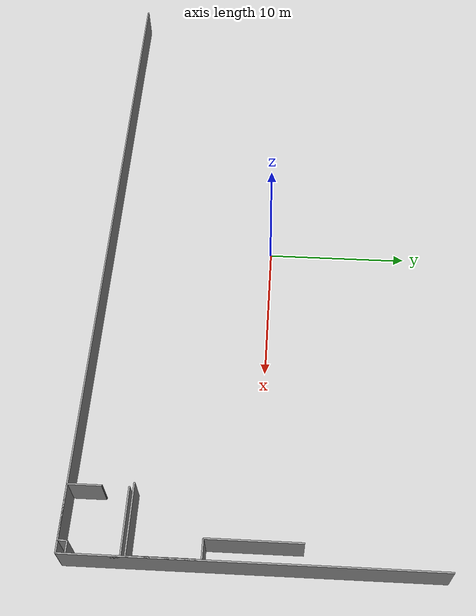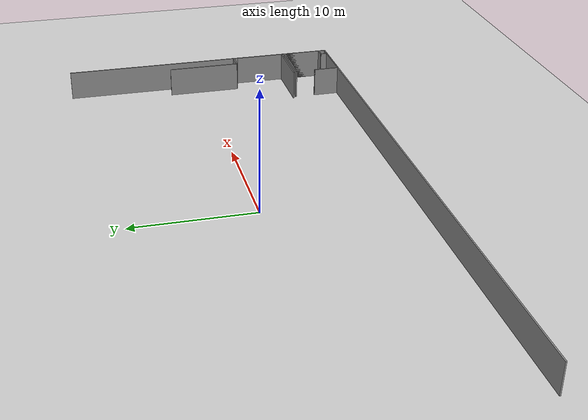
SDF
<sdf version="1.6">
 <world name="default">
  <model name="ground_plane">
   <static>1</static>
   <link name="link">
    <collision name="collision">
     <geometry><plane><normal>0 0 1</normal><size>100 100</size></plane></geometry>
     <surface><friction><ode><mu>100</mu><mu2>50</mu2></ode></friction></surface>
    </collision>
    <visual name="visual">
     <cast_shadows>0</cast_shadows>
     <geometry><plane><normal>0 0 1</normal><size>100 100</size></plane></geometry>
     <material>
      <script><uri>file://media/materials/scripts/gazebo.material</uri><name>Gazebo/Grey</name></script>
     </material>
    </visual>
   </link>
  </model>
  <model name="0510030940_A_40_1_104">
   <static>1</static>
   <link name="Wall_110">
    <collision name="Wall_110_Collision">
     <geometry><box><size>4.26413032429 0.1 2.5</size></box></geometry>
     <pose>2.13206516214 0 1.25 0 0 0</pose>
    </collision>
    <visual name="Wall_110_Visual">
     <pose>2.13206516214 0 1.25 0 0 0</pose>
     <geometry><box><size>4.26413032429 0.1 2.5</size></box></geometry>
     <material>
      <script><uri>file://media/materials/scripts/gazebo.material</uri><name>Gazebo/Grey</name></script>
      <ambient>1 1 1 1</ambient>
     </material>
    </visual>
    <pose>47.5571820677 -15.461522822 0 0 0 -1.57079632679</pose>
   </link>
   <link name="Wall_111">
    <collision name="Wall_111_Collision">
     <geometry><box><size>4.59553217444 0.1 2.5</size></box></geometry>
     <pose>2.29776608722 0 1.25 0 0 0</pose>
    </collision>
    <visual name="Wall_111_Visual">
     <pose>2.29776608722 0 1.25 0 0 0</pose>
     <geometry><box><size>4.59553217444 0.1 2.5</size></box></geometry>
     <material>
      <script><uri>file://media/materials/scripts/gazebo.material</uri><name>Gazebo/Grey</name></script>
      <ambient>1 1 1 1</ambient>
     </material>
    </visual>
    <pose>47.5571820677 -19.7256531463 0 0 0 3.14159265359</pose>
   </link>
   <link name="Wall_128">
    <collision name="Wall_128_Collision">
     <geometry><box><size>2.18105113348 0.1 2.5</size></box></geometry>
     <pose>1.09052556674 0 1.25 0 0 0</pose>
    </collision>
    <visual name="Wall_128_Visual">
     <pose>1.09052556674 0 1.25 0 0 0</pose>
     <geometry><box><size>2.18105113348 0.1 2.5</size></box></geometry>
     <material>
      <script><uri>file://media/materials/scripts/gazebo.material</uri><name>Gazebo/Grey</name></script>
      <ambient>1 1 1 1</ambient>
     </material>
    </visual>
    <pose>43.2705601301 -23.9314577615 0 0 0 1.57079632679</pose>
   </link>
   <link name="Wall_129">
    <collision name="Wall_129_Collision">
     <geometry><box><size>0.0405357324387 0.1 2.5</size></box></geometry>
     <pose>0.0202678662194 0 1.25 0 0 0</pose>
    </collision>
    <visual name="Wall_129_Visual">
     <pose>0.0202678662194 0 1.25 0 0 0</pose>
     <geometry><box><size>0.0405357324387 0.1 2.5</size></box></geometry>
     <material>
      <script><uri>file://media/materials/scripts/gazebo.material</uri><name>Gazebo/Grey</name></script>
      <ambient>1 1 1 1</ambient>
     </material>
    </visual>
    <pose>43.2705601301 -21.750406628 0 0 0 3.14159265359</pose>
   </link>
   <link name="Wall_132">
    <collision name="Wall_132_Collision">
     <geometry><box><size>4.34761614313 0.1 2.5</size></box></geometry>
     <pose>2.17380807157 0 1.25 0 0 0</pose>
    </collision>
    <visual name="Wall_132_Visual">
     <pose>2.17380807157 0 1.25 0 0 0</pose>
     <geometry><box><size>4.34761614313 0.1 2.5</size></box></geometry>
     <material>
      <script><uri>file://media/materials/scripts/gazebo.material</uri><name>Gazebo/Grey</name></script>
      <ambient>1 1 1 1</ambient>
     </material>
    </visual>
    <pose>43.2300243977 -20.0097844871 0 0 0 0.0</pose>
   </link>
   <link name="Wall_133">
    <collision name="Wall_133_Collision">
     <geometry><box><size>3.33333333333 0.1 2.5</size></box></geometry>
     <pose>1.66666666667 0 1.25 0 0 0</pose>
    </collision>
    <visual name="Wall_133_Visual">
     <pose>1.66666666667 0 1.25 0 0 0</pose>
     <geometry><box><size>3.33333333333 0.1 2.5</size></box></geometry>
     <material>
      <script><uri>file://media/materials/scripts/gazebo.material</uri><name>Gazebo/Grey</name></script>
      <ambient>1 1 1 1</ambient>
     </material>
    </visual>
    <pose>47.5776405408 -20.0097844871 0 0 0 -1.57079632679</pose>
   </link>
   <link name="Wall_134">
    <collision name="Wall_134_Collision">
     <geometry><box><size>0.783140185016 0.1 2.5</size></box></geometry>
     <pose>0.391570092508 0 1.25 0 0 0</pose>
    </collision>
    <visual name="Wall_134_Visual">
     <pose>0.391570092508 0 1.25 0 0 0</pose>
     <geometry><box><size>0.783140185016 0.1 2.5</size></box></geometry>
     <material>
      <script><uri>file://media/materials/scripts/gazebo.material</uri><name>Gazebo/Grey</name></script>
      <ambient>1 1 1 1</ambient>
     </material>
    </visual>
    <pose>47.5776405408 -23.3431178205 0 0 0 3.14159265359</pose>
   </link>
   <link name="Wall_135">
    <collision name="Wall_135_Collision">
     <geometry><box><size>0.581478092915 0.1 2.5</size></box></geometry>
     <pose>0.290739046457 0 1.25 0 0 0</pose>
    </collision>
    <visual name="Wall_135_Visual">
     <pose>0.290739046457 0 1.25 0 0 0</pose>
     <geometry><box><size>0.581478092915 0.1 2.5</size></box></geometry>
     <material>
      <script><uri>file://media/materials/scripts/gazebo.material</uri><name>Gazebo/Grey</name></script>
      <ambient>1 1 1 1</ambient>
     </material>
    </visual>
    <pose>46.7945003558 -23.3431178205 0 0 0 -1.57079632679</pose>
   </link>
   <link name="Wall_136">
    <collision name="Wall_136_Collision">
     <geometry><box><size>3.5239469064 0.1 2.5</size></box></geometry>
     <pose>1.7619734532 0 1.25 0 0 0</pose>
    </collision>
    <visual name="Wall_136_Visual">
     <pose>1.7619734532 0 1.25 0 0 0</pose>
     <geometry><box><size>3.5239469064 0.1 2.5</size></box></geometry>
     <material>
      <script><uri>file://media/materials/scripts/gazebo.material</uri><name>Gazebo/Grey</name></script>
      <ambient>1 1 1 1</ambient>
     </material>
    </visual>
    <pose>46.7945003558 -23.9245959134 0 0 0 -3.13964544705</pose>
   </link>
   <link name="Wall_149">
    <collision name="Wall_149_Collision">
     <geometry><box><size>1.28723187964 0.1 2.5</size></box></geometry>
     <pose>0.643615939819 0 1.25 0 0 0</pose>
    </collision>
    <visual name="Wall_149_Visual">
     <pose>0.643615939819 0 1.25 0 0 0</pose>
     <geometry><box><size>1.28723187964 0.1 2.5</size></box></geometry>
     <material>
      <script><uri>file://media/materials/scripts/gazebo.material</uri><name>Gazebo/Grey</name></script>
      <ambient>1 1 1 1</ambient>
     </material>
    </visual>
    <pose>47.5534970011 -15.1078835011 0 0 0 3.14159265359</pose>
   </link>
   <link name="Wall_150">
    <collision name="Wall_150_Collision">
     <geometry><box><size>6.16816610755 0.1 2.5</size></box></geometry>
     <pose>3.08408305378 0 1.25 0 0 0</pose>
    </collision>
    <visual name="Wall_150_Visual">
     <pose>3.08408305378 0 1.25 0 0 0</pose>
     <geometry><box><size>6.16816610755 0.1 2.5</size></box></geometry>
     <material>
      <script><uri>file://media/materials/scripts/gazebo.material</uri><name>Gazebo/Grey</name></script>
      <ambient>1 1 1 1</ambient>
     </material>
    </visual>
    <pose>46.2662651215 -15.1078835011 0 0 0 1.57079632679</pose>
   </link>
   <link name="Wall_157">
    <collision name="Wall_157_Collision">
     <geometry><box><size>23.9314577615 0.1 2.5</size></box></geometry>
     <pose>11.9657288808 0 1.25 0 0 0</pose>
    </collision>
    <visual name="Wall_157_Visual">
     <pose>11.9657288808 0 1.25 0 0 0</pose>
     <geometry><box><size>23.9314577615 0.1 2.5</size></box></geometry>
     <material>
      <script><uri>file://media/materials/scripts/gazebo.material</uri><name>Gazebo/Grey</name></script>
      <ambient>1 1 1 1</ambient>
     </material>
    </visual>
    <pose>47.5776405408 -23.9314577615 0 0 0 1.57079632679</pose>
   </link>
   <link name="Wall_158">
    <collision name="Wall_158_Collision">
     <geometry><box><size>47.5776405408 0.1 2.5</size></box></geometry>
     <pose>23.7888202704 0 1.25 0 0 0</pose>
    </collision>
    <visual name="Wall_158_Visual">
     <pose>23.7888202704 0 1.25 0 0 0</pose>
     <geometry><box><size>47.5776405408 0.1 2.5</size></box></geometry>
     <material>
      <script><uri>file://media/materials/scripts/gazebo.material</uri><name>Gazebo/Grey</name></script>
      <ambient>1 1 1 1</ambient>
     </material>
    </visual>
    <pose>47.5776405408 -23.9314577615 0 0 0 3.14159265359</pose>
   </link>
   <pose>-23.75 11.9814577615 0 0 0 0</pose>
  </model>
 </world>
</sdf>
